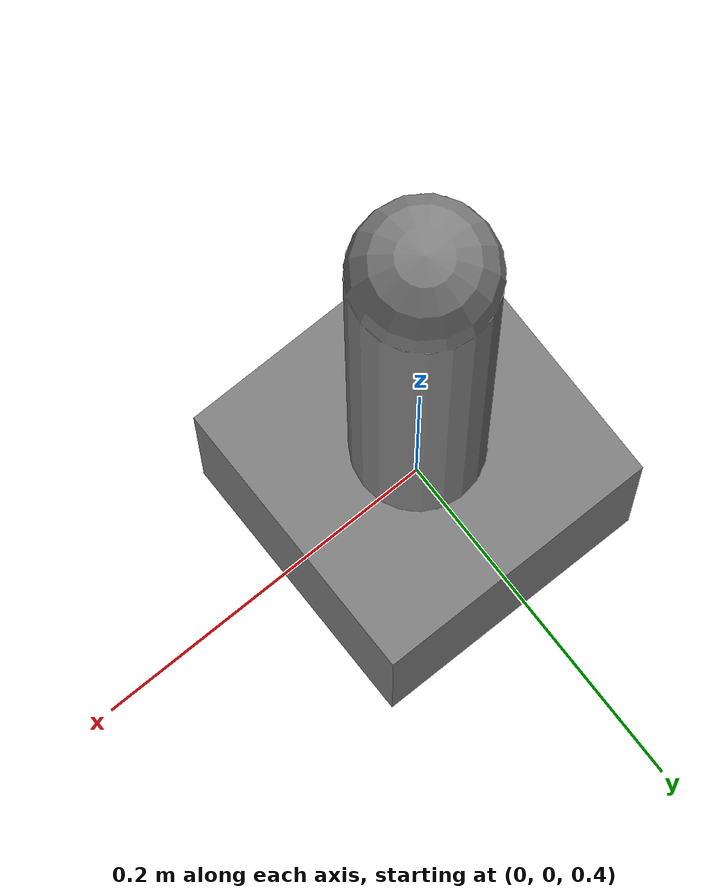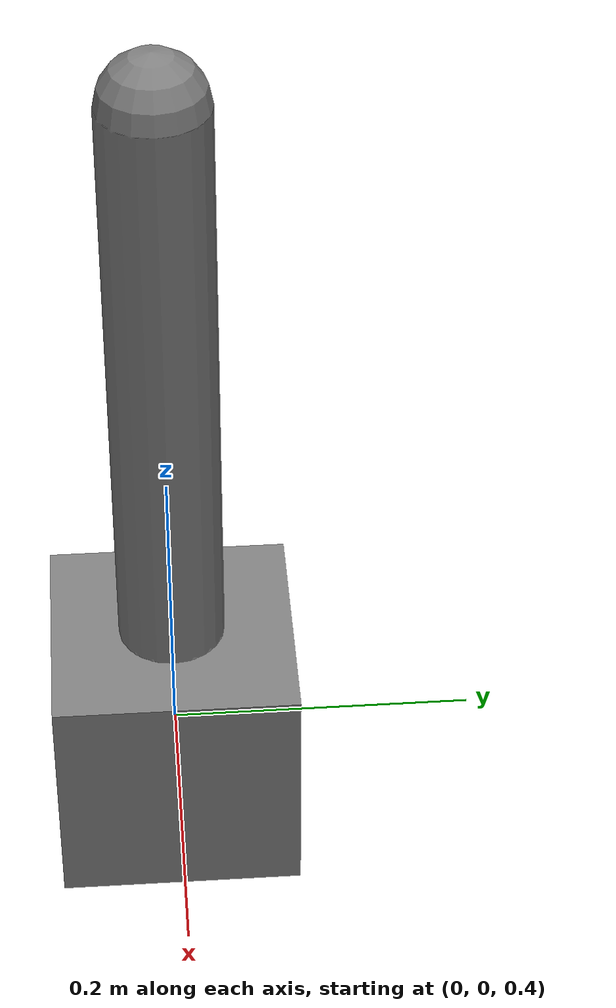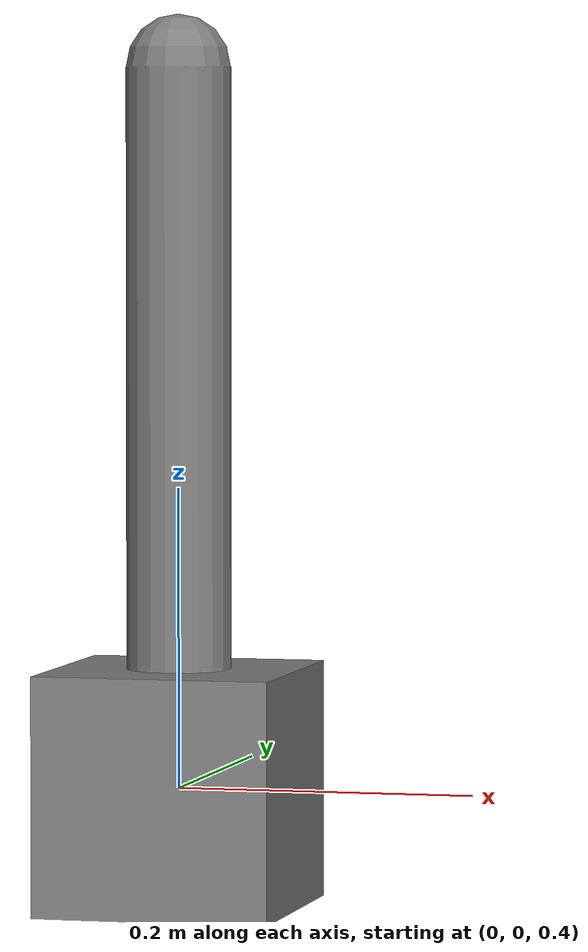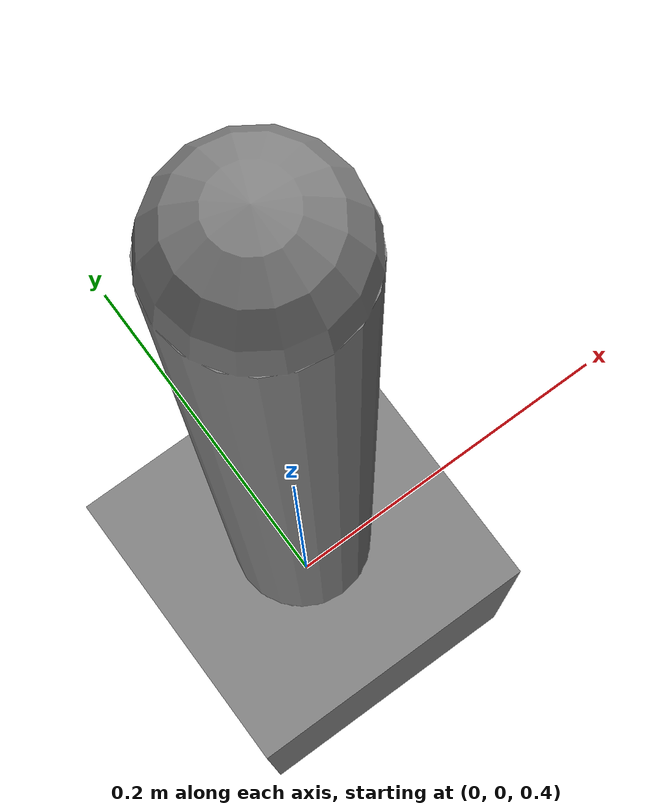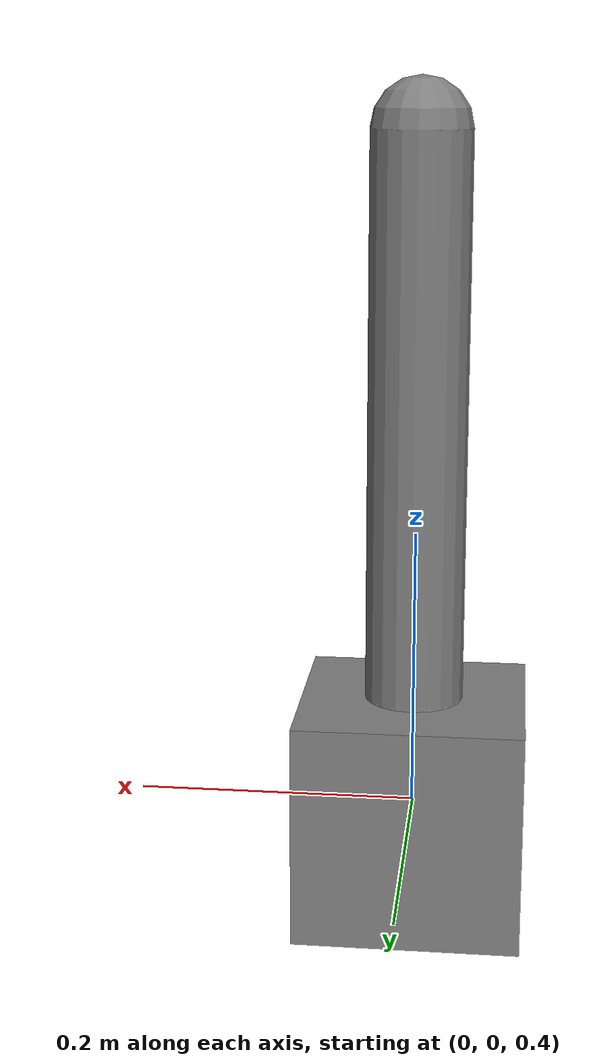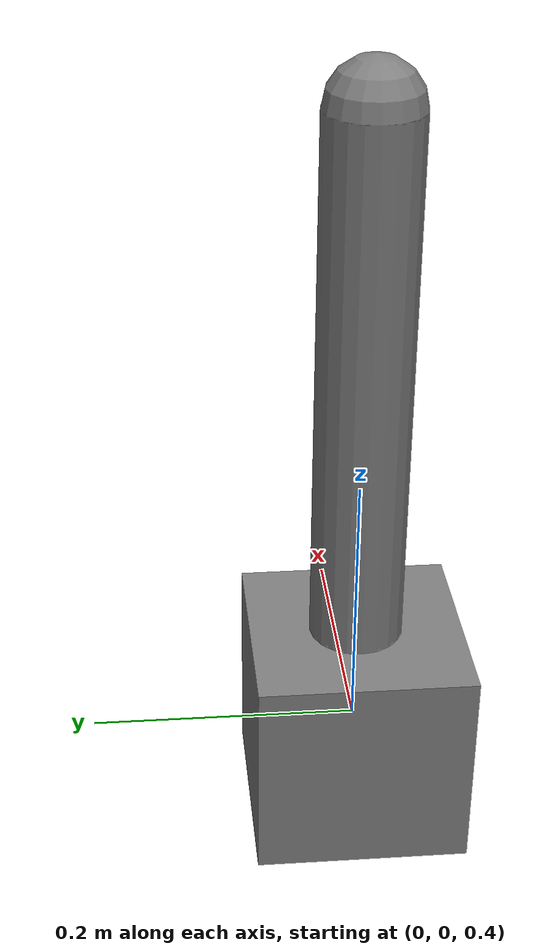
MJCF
<mujoco model="actuator_contract_seeded_failure">
  <compiler angle="degree" autolimits="true"/>
  <option gravity="0 0 0" timestep="0.002"/>
  <worldbody>
    <body name="mount" pos="0 0 0.4">
      <geom name="mount_geom" type="box" size="0.08 0.08 0.08" mass="2"/>
      <body name="arm" pos="0 0 0.08">
        <joint name="shoulder" type="hinge" axis="0 1 0" range="-30 45" damping="0.2"/>
        <geom name="arm_geom" type="capsule" fromto="0 0 0 0 0 0.40" size="0.035" mass="1"/>
      </body>
    </body>
  </worldbody>
  <actuator>
    <!-- The negative transmission remains loadable but reverses commanded motion. -->
    <motor name="shoulder_motor" joint="shoulder" gear="-1" ctrllimited="true" ctrlrange="-1 1" forcelimited="true" forcerange="-12 12"/>
  </actuator>
</mujoco>
